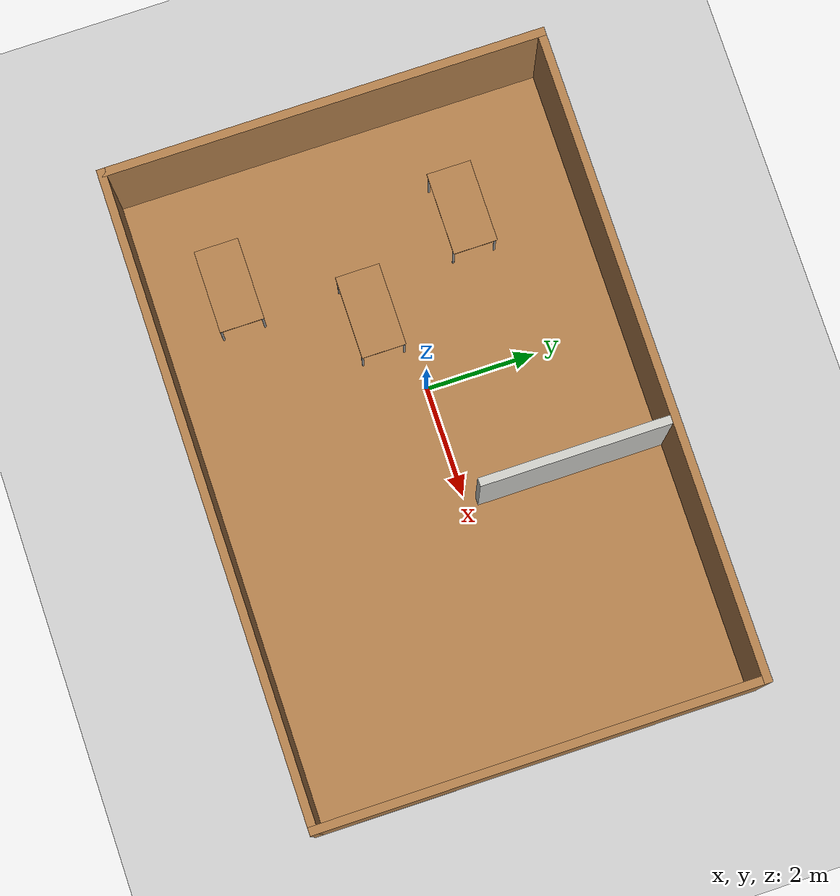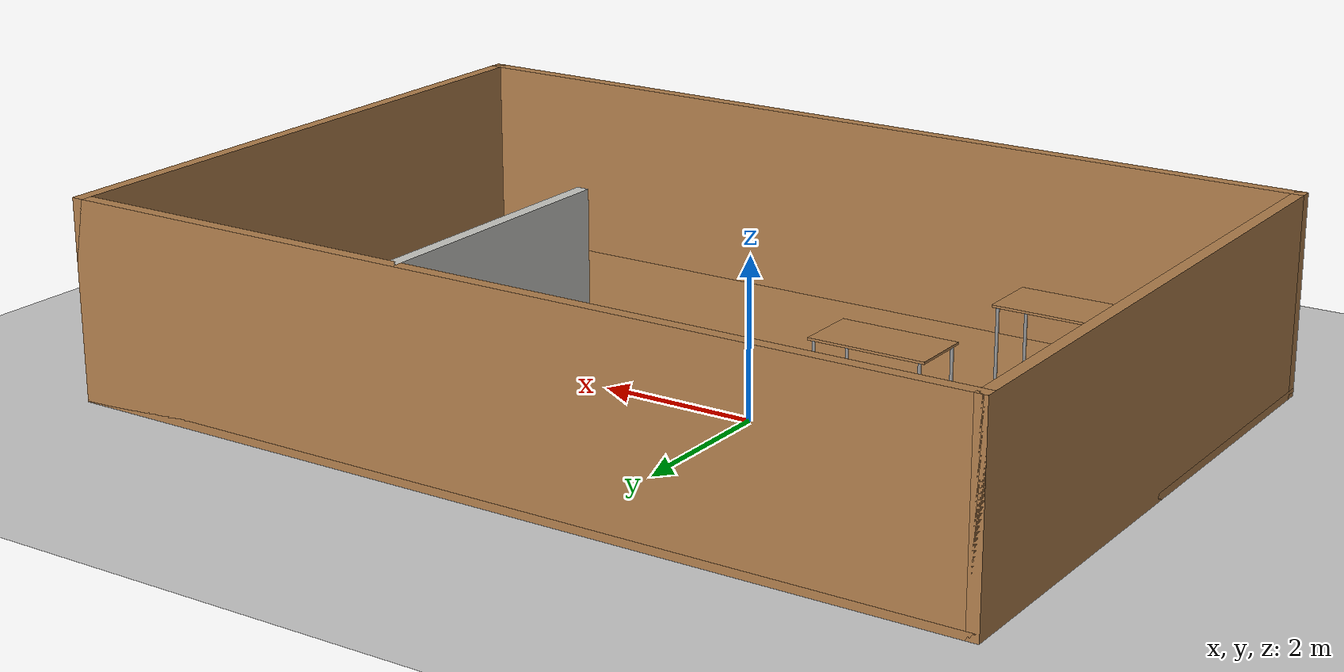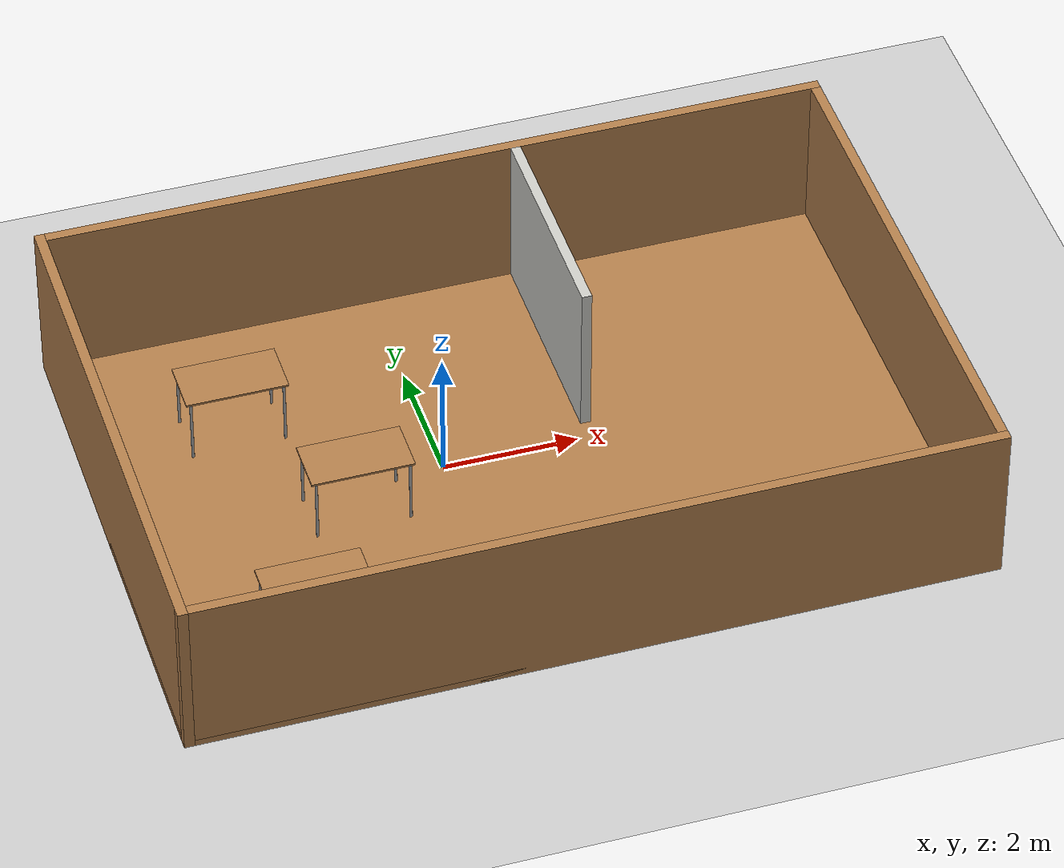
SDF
<sdf version="1.7">
 <world name="default">
  <light name="sun" type="directional">
   <pose>0 0 10 0 -0 0</pose>
   <diffuse>0.8 0.8 0.8 1</diffuse>
   <specular>0.2 0.2 0.2 1</specular>
   <attenuation>
    <range>1000</range>
    <constant>0.9</constant>
    <linear>0.01</linear>
    <quadratic>0.001</quadratic>
   </attenuation>
   <direction>-0.5 0.1 -0.9</direction>
   <spot><inner_angle>0</inner_angle><outer_angle>0</outer_angle><falloff>0</falloff></spot>
  </light>
  <model name="ground_plane">
   <static>1</static>
   <link name="link">
    <collision name="collision">
     <geometry><plane><normal>0 0 1</normal><size>100 100</size></plane></geometry>
     <surface><friction><ode><mu>100</mu><mu2>50</mu2></ode></friction></surface>
    </collision>
    <visual name="visual">
     <cast_shadows>0</cast_shadows>
     <geometry><plane><normal>0 0 1</normal><size>100 100</size></plane></geometry>
     <material>
      <script><uri>file://media/materials/scripts/gazebo.material</uri><name>Gazebo/Grey</name></script>
     </material>
    </visual>
   </link>
  </model>
  <gravity>0 0 -9.8</gravity>
  <magnetic_field>6e-06 2.3e-05 -4.2e-05</magnetic_field>
  <atmosphere type="adiabatic"/>
  <physics type="ode">
   <max_step_size>0.001</max_step_size>
   <real_time_factor>1</real_time_factor>
   <real_time_update_rate>1000</real_time_update_rate>
  </physics>
  <scene><ambient>0.4 0.4 0.4 1</ambient><background>0.7 0.7 0.7 1</background><shadows>1</shadows></scene>
  <audio><device>default</device></audio>
  <spherical_coordinates>
   <surface_model>EARTH_WGS84</surface_model>
   <latitude_deg>0</latitude_deg>
   <longitude_deg>0</longitude_deg>
   <elevation>0</elevation>
   <heading_deg>0</heading_deg>
  </spherical_coordinates>
  <model name="restaurant">
   <pose>0.956354 -0.262421 0 0 -0 0</pose>
   <link name="Floor_0">
    <collision name="Floor_0_Collision">
     <geometry><box><size>11.75 8 0.1</size></box></geometry>
     <pose>0 0 0.05 0 -0 0</pose>
    </collision>
    <visual name="Floor_0_Visual">
     <pose>0 0 0.05 0 -0 0</pose>
     <geometry><box><size>11.75 8 0.1</size></box></geometry>
     <material>
      <script><uri>file://media/materials/scripts/gazebo.material</uri><name>Gazebo/Wood</name></script>
      <ambient>1 1 1 1</ambient>
     </material>
     <meta><layer>0</layer></meta>
    </visual>
   </link>
   <link name="Wall_10">
    <collision name="Wall_10_Collision">
     <geometry><box><size>11.75 0.15 2.5</size></box></geometry>
     <pose>0 0 1.25 0 -0 0</pose>
    </collision>
    <visual name="Wall_10_Visual">
     <pose>0 0 1.25 0 -0 0</pose>
     <geometry><box><size>11.75 0.15 2.5</size></box></geometry>
     <material>
      <script><uri>file://media/materials/scripts/gazebo.material</uri><name>Gazebo/Wood</name></script>
      <ambient>0.878431 0.105882 0.141176 1</ambient>
     </material>
     <meta><layer>0</layer></meta>
    </visual>
    <pose>0 -3.925 0 0 -0 3.14159</pose>
   </link>
   <link name="Wall_11">
    <collision name="Wall_11_Collision">
     <geometry><box><size>8 0.15 2.5</size></box></geometry>
     <pose>0 0 1.25 0 -0 0</pose>
    </collision>
    <visual name="Wall_11_Visual">
     <pose>0 0 1.25 0 -0 0</pose>
     <geometry><box><size>8 0.15 2.5</size></box></geometry>
     <material>
      <script><uri>file://media/materials/scripts/gazebo.material</uri><name>Gazebo/Wood</name></script>
      <ambient>0.878431 0.105882 0.141176 1</ambient>
     </material>
     <meta><layer>0</layer></meta>
    </visual>
    <pose>-5.8 0 0 0 -0 1.5708</pose>
   </link>
   <link name="Wall_12">
    <collision name="Wall_12_Collision">
     <geometry><box><size>3.5 0.15 2.5</size></box></geometry>
     <pose>0 0 1.25 0 -0 0</pose>
    </collision>
    <visual name="Wall_12_Visual">
     <pose>0 0 1.25 0 -0 0</pose>
     <geometry><box><size>3.5 0.15 2.5</size></box></geometry>
     <material>
      <script><uri>file://media/materials/scripts/gazebo.material</uri><name>Gazebo/CeilingTiled</name></script>
      <ambient>0.435294 0.796078 0.67451 1</ambient>
     </material>
     <meta><layer>0</layer></meta>
    </visual>
    <pose>1.21964 2.20977 0 0 -0 -1.5708</pose>
   </link>
   <link name="Wall_8">
    <collision name="Wall_8_Collision">
     <geometry><box><size>11.75 0.15 2.5</size></box></geometry>
     <pose>0 0 1.25 0 -0 0</pose>
    </collision>
    <visual name="Wall_8_Visual">
     <pose>0 0 1.25 0 -0 0</pose>
     <geometry><box><size>11.75 0.15 2.5</size></box></geometry>
     <material>
      <script><uri>file://media/materials/scripts/gazebo.material</uri><name>Gazebo/Wood</name></script>
      <ambient>0.878431 0.105882 0.141176 1</ambient>
     </material>
     <meta><layer>0</layer></meta>
    </visual>
    <pose>0 3.925 0 0 -0 0</pose>
   </link>
   <link name="Wall_9">
    <collision name="Wall_9_Collision">
     <geometry><box><size>8 0.15 2.5</size></box></geometry>
     <pose>0 0 1.25 0 -0 0</pose>
    </collision>
    <visual name="Wall_9_Visual">
     <pose>0 0 1.25 0 -0 0</pose>
     <geometry><box><size>8 0.15 2.5</size></box></geometry>
     <material>
      <script><uri>file://media/materials/scripts/gazebo.material</uri><name>Gazebo/Wood</name></script>
      <ambient>0.878431 0.105882 0.141176 1</ambient>
     </material>
     <meta><layer>0</layer></meta>
    </visual>
    <pose>5.8 0 0 0 -0 -1.5708</pose>
   </link>
   <static>1</static>
  </model>
  <model name="table">
   <static>1</static>
   <link name="link">
    <collision name="surface">
     <pose>0 0 1 0 -0 0</pose>
     <geometry><box><size>1.5 0.8 0.03</size></box></geometry>
     <surface><friction><ode><mu>0.6</mu><mu2>0.6</mu2></ode></friction></surface>
    </collision>
    <visual name="visual1">
     <pose>0 0 1 0 -0 0</pose>
     <geometry><box><size>1.5 0.8 0.03</size></box></geometry>
     <material>
      <script><uri>file://media/materials/scripts/gazebo.material</uri><name>Gazebo/Wood</name></script>
     </material>
    </visual>
    <collision name="front_left_leg">
     <pose>0.68 0.38 0.5 0 -0 0</pose>
     <geometry><cylinder><radius>0.02</radius><length>1</length></cylinder></geometry>
    </collision>
    <visual name="front_left_leg">
     <pose>0.68 0.38 0.5 0 -0 0</pose>
     <geometry><cylinder><radius>0.02</radius><length>1</length></cylinder></geometry>
     <material>
      <script><uri>file://media/materials/scripts/gazebo.material</uri><name>Gazebo/Grey</name></script>
     </material>
    </visual>
    <collision name="front_right_leg">
     <pose>0.68 -0.38 0.5 0 -0 0</pose>
     <geometry><cylinder><radius>0.02</radius><length>1</length></cylinder></geometry>
    </collision>
    <visual name="front_right_leg">
     <pose>0.68 -0.38 0.5 0 -0 0</pose>
     <geometry><cylinder><radius>0.02</radius><length>1</length></cylinder></geometry>
     <material>
      <script><uri>file://media/materials/scripts/gazebo.material</uri><name>Gazebo/Grey</name></script>
     </material>
    </visual>
    <collision name="back_right_leg">
     <pose>-0.68 -0.38 0.5 0 -0 0</pose>
     <geometry><cylinder><radius>0.02</radius><length>1</length></cylinder></geometry>
    </collision>
    <visual name="back_right_leg">
     <pose>-0.68 -0.38 0.5 0 -0 0</pose>
     <geometry><cylinder><radius>0.02</radius><length>1</length></cylinder></geometry>
     <material>
      <script><uri>file://media/materials/scripts/gazebo.material</uri><name>Gazebo/Grey</name></script>
     </material>
    </visual>
    <collision name="back_left_leg">
     <pose>-0.68 0.38 0.5 0 -0 0</pose>
     <geometry><cylinder><radius>0.02</radius><length>1</length></cylinder></geometry>
    </collision>
    <visual name="back_left_leg">
     <pose>-0.68 0.38 0.5 0 -0 0</pose>
     <geometry><cylinder><radius>0.02</radius><length>1</length></cylinder></geometry>
     <material>
      <script><uri>file://media/materials/scripts/gazebo.material</uri><name>Gazebo/Grey</name></script>
     </material>
    </visual>
   </link>
   <pose>-2.67766 1.53645 0.1 0 -0 0</pose>
  </model>
  <model name="table_0">
   <static>1</static>
   <link name="link">
    <collision name="surface">
     <pose>0 0 1 0 -0 0</pose>
     <geometry><box><size>1.5 0.8 0.03</size></box></geometry>
     <surface><friction><ode><mu>0.6</mu><mu2>0.6</mu2></ode></friction></surface>
    </collision>
    <visual name="visual1">
     <pose>0 0 1 0 -0 0</pose>
     <geometry><box><size>1.5 0.8 0.03</size></box></geometry>
     <material>
      <script><uri>file://media/materials/scripts/gazebo.material</uri><name>Gazebo/Wood</name></script>
     </material>
    </visual>
    <collision name="front_left_leg">
     <pose>0.68 0.38 0.5 0 -0 0</pose>
     <geometry><cylinder><radius>0.02</radius><length>1</length></cylinder></geometry>
    </collision>
    <visual name="front_left_leg">
     <pose>0.68 0.38 0.5 0 -0 0</pose>
     <geometry><cylinder><radius>0.02</radius><length>1</length></cylinder></geometry>
     <material>
      <script><uri>file://media/materials/scripts/gazebo.material</uri><name>Gazebo/Grey</name></script>
     </material>
    </visual>
    <collision name="front_right_leg">
     <pose>0.68 -0.38 0.5 0 -0 0</pose>
     <geometry><cylinder><radius>0.02</radius><length>1</length></cylinder></geometry>
    </collision>
    <visual name="front_right_leg">
     <pose>0.68 -0.38 0.5 0 -0 0</pose>
     <geometry><cylinder><radius>0.02</radius><length>1</length></cylinder></geometry>
     <material>
      <script><uri>file://media/materials/scripts/gazebo.material</uri><name>Gazebo/Grey</name></script>
     </material>
    </visual>
    <collision name="back_right_leg">
     <pose>-0.68 -0.38 0.5 0 -0 0</pose>
     <geometry><cylinder><radius>0.02</radius><length>1</length></cylinder></geometry>
    </collision>
    <visual name="back_right_leg">
     <pose>-0.68 -0.38 0.5 0 -0 0</pose>
     <geometry><cylinder><radius>0.02</radius><length>1</length></cylinder></geometry>
     <material>
      <script><uri>file://media/materials/scripts/gazebo.material</uri><name>Gazebo/Grey</name></script>
     </material>
    </visual>
    <collision name="back_left_leg">
     <pose>-0.68 0.38 0.5 0 -0 0</pose>
     <geometry><cylinder><radius>0.02</radius><length>1</length></cylinder></geometry>
    </collision>
    <visual name="back_left_leg">
     <pose>-0.68 0.38 0.5 0 -0 0</pose>
     <geometry><cylinder><radius>0.02</radius><length>1</length></cylinder></geometry>
     <material>
      <script><uri>file://media/materials/scripts/gazebo.material</uri><name>Gazebo/Grey</name></script>
     </material>
    </visual>
   </link>
   <pose>-1.42937 -0.547083 0.1 0 -0 0</pose>
  </model>
  <model name="table_1">
   <static>1</static>
   <link name="link">
    <collision name="surface">
     <pose>0 0 1 0 -0 0</pose>
     <geometry><box><size>1.5 0.8 0.03</size></box></geometry>
     <surface><friction><ode><mu>0.6</mu><mu2>0.6</mu2></ode></friction></surface>
    </collision>
    <visual name="visual1">
     <pose>0 0 1 0 -0 0</pose>
     <geometry><box><size>1.5 0.8 0.03</size></box></geometry>
     <material>
      <script><uri>file://media/materials/scripts/gazebo.material</uri><name>Gazebo/Wood</name></script>
     </material>
    </visual>
    <collision name="front_left_leg">
     <pose>0.68 0.38 0.5 0 -0 0</pose>
     <geometry><cylinder><radius>0.02</radius><length>1</length></cylinder></geometry>
    </collision>
    <visual name="front_left_leg">
     <pose>0.68 0.38 0.5 0 -0 0</pose>
     <geometry><cylinder><radius>0.02</radius><length>1</length></cylinder></geometry>
     <material>
      <script><uri>file://media/materials/scripts/gazebo.material</uri><name>Gazebo/Grey</name></script>
     </material>
    </visual>
    <collision name="front_right_leg">
     <pose>0.68 -0.38 0.5 0 -0 0</pose>
     <geometry><cylinder><radius>0.02</radius><length>1</length></cylinder></geometry>
    </collision>
    <visual name="front_right_leg">
     <pose>0.68 -0.38 0.5 0 -0 0</pose>
     <geometry><cylinder><radius>0.02</radius><length>1</length></cylinder></geometry>
     <material>
      <script><uri>file://media/materials/scripts/gazebo.material</uri><name>Gazebo/Grey</name></script>
     </material>
    </visual>
    <collision name="back_right_leg">
     <pose>-0.68 -0.38 0.5 0 -0 0</pose>
     <geometry><cylinder><radius>0.02</radius><length>1</length></cylinder></geometry>
    </collision>
    <visual name="back_right_leg">
     <pose>-0.68 -0.38 0.5 0 -0 0</pose>
     <geometry><cylinder><radius>0.02</radius><length>1</length></cylinder></geometry>
     <material>
      <script><uri>file://media/materials/scripts/gazebo.material</uri><name>Gazebo/Grey</name></script>
     </material>
    </visual>
    <collision name="back_left_leg">
     <pose>-0.68 0.38 0.5 0 -0 0</pose>
     <geometry><cylinder><radius>0.02</radius><length>1</length></cylinder></geometry>
    </collision>
    <visual name="back_left_leg">
     <pose>-0.68 0.38 0.5 0 -0 0</pose>
     <geometry><cylinder><radius>0.02</radius><length>1</length></cylinder></geometry>
     <material>
      <script><uri>file://media/materials/scripts/gazebo.material</uri><name>Gazebo/Grey</name></script>
     </material>
    </visual>
   </link>
   <pose>-2.63052 -2.73609 0.1 0 -0 0</pose>
  </model>
 </world>
</sdf>
